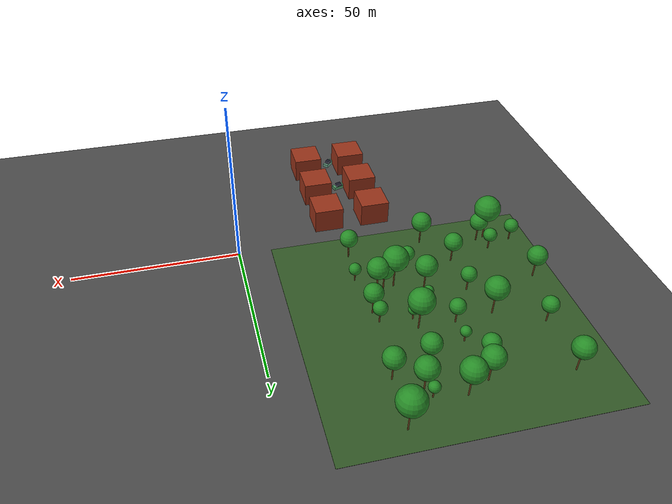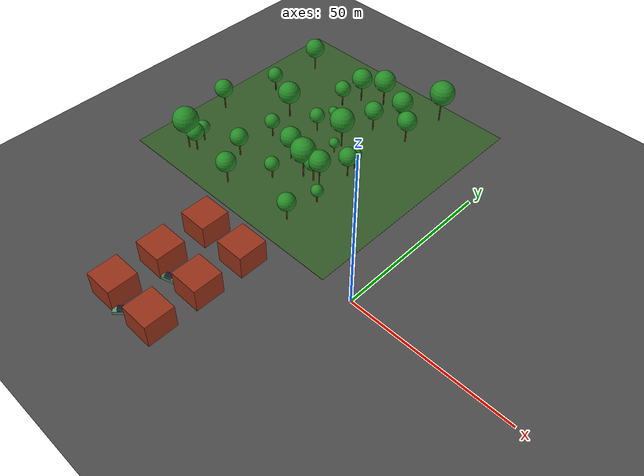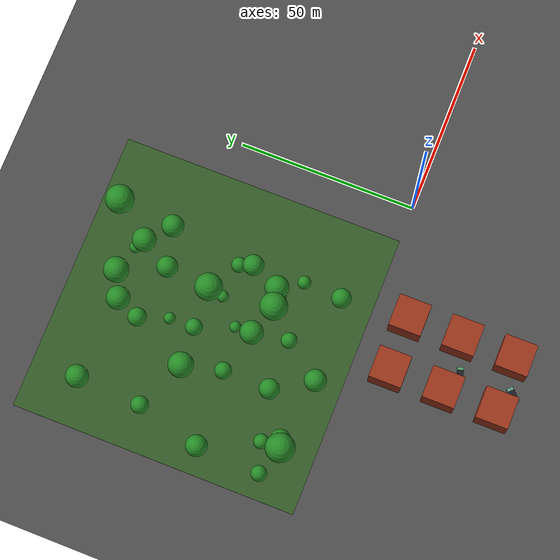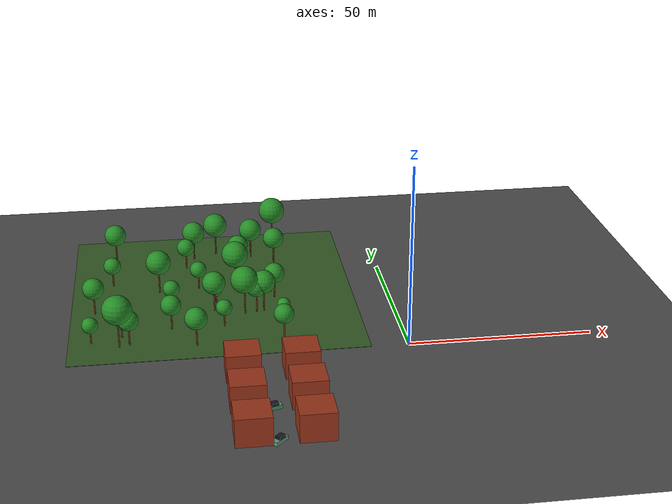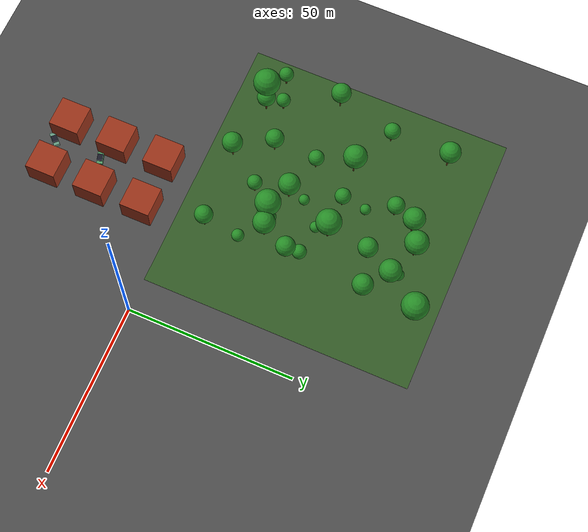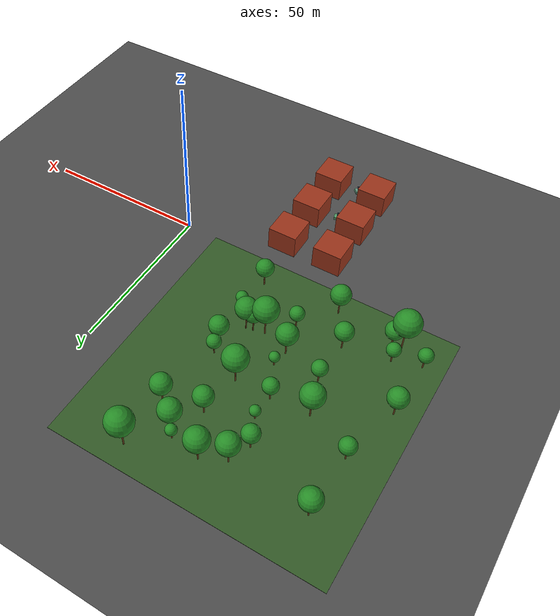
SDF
<sdf version="1.6">
 <world name="drone_city_dynamic">
  <include><uri>model://sun</uri></include>
  <model name="ground_plane">
   <static>true</static>
   <link name="link">
    <collision name="collision">
     <geometry><plane><normal>0 0 1</normal><size>400 400</size></plane></geometry>
    </collision>
    <visual name="visual">
     <geometry><plane><normal>0 0 1</normal><size>400 400</size></plane></geometry>
     <material><ambient>0.28 0.28 0.28 1</ambient><diffuse>0.3 0.3 0.3 1</diffuse></material>
    </visual>
   </link>
  </model>
  <model name="park_grass">
   <static>true</static>
   <pose>-50 40 0.01 0 0 0</pose>
   <link name="l">
    <visual name="v">
     <geometry><plane><normal>0 0 1</normal><size>80 80</size></plane></geometry>
     <material><ambient>0.2 0.35 0.15 1</ambient></material>
    </visual>
   </link>
  </model>
  <model name="park_tree_0">
   <static>true</static>
   <pose>-53.53105096433167 49.667567099704264 0 0 0 0</pose>
   <link name="l">
    <visual name="t">
     <pose>0 0 1.5753098112096817 0 0 0</pose>
     <geometry><cylinder><radius>0.2</radius><length>3.1506196224193634</length></cylinder></geometry>
     <material><ambient>0.4 0.25 0.1 1</ambient></material>
    </visual>
    <collision name="c">
     <pose>0 0 1.5753098112096817 0 0 0</pose>
     <geometry><cylinder><radius>0.2</radius><length>3.1506196224193634</length></cylinder></geometry>
    </collision>
    <visual name="canopy">
     <pose>0 0 3.7259294336290454 0 0 0</pose>
     <geometry><sphere><radius>1.5753098112096817</radius></sphere></geometry>
     <material><ambient>0.1 0.5 0.1 1</ambient><diffuse>0.15 0.55 0.15 1</diffuse></material>
    </visual>
    <collision name="canopy_c">
     <pose>0 0 3.7259294336290454 0 0 0</pose>
     <geometry><sphere><radius>1.5753098112096817</radius></sphere></geometry>
    </collision>
   </link>
  </model>
  <model name="park_tree_1">
   <static>true</static>
   <pose>-47.91173286627025 17.553910634512516 0 0 0 0</pose>
   <link name="l">
    <visual name="t">
     <pose>0 0 2.2063581630802718 0 0 0</pose>
     <geometry><cylinder><radius>0.2</radius><length>4.4127163261605435</length></cylinder></geometry>
     <material><ambient>0.4 0.25 0.1 1</ambient></material>
    </visual>
    <collision name="c">
     <pose>0 0 2.2063581630802718 0 0 0</pose>
     <geometry><cylinder><radius>0.2</radius><length>4.4127163261605435</length></cylinder></geometry>
    </collision>
    <visual name="canopy">
     <pose>0 0 5.619074489240815 0 0 0</pose>
     <geometry><sphere><radius>2.2063581630802718</radius></sphere></geometry>
     <material><ambient>0.1 0.5 0.1 1</ambient><diffuse>0.15 0.55 0.15 1</diffuse></material>
    </visual>
    <collision name="canopy_c">
     <pose>0 0 5.619074489240815 0 0 0</pose>
     <geometry><sphere><radius>2.2063581630802718</radius></sphere></geometry>
    </collision>
   </link>
  </model>
  <model name="park_tree_2">
   <static>true</static>
   <pose>-33.413778043619125 37.62001722663782 0 0 0 0</pose>
   <link name="l">
    <visual name="t">
     <pose>0 0 2.120419053900255 0 0 0</pose>
     <geometry><cylinder><radius>0.2</radius><length>4.24083810780051</length></cylinder></geometry>
     <material><ambient>0.4 0.25 0.1 1</ambient></material>
    </visual>
    <collision name="c">
     <pose>0 0 2.120419053900255 0 0 0</pose>
     <geometry><cylinder><radius>0.2</radius><length>4.24083810780051</length></cylinder></geometry>
    </collision>
    <visual name="canopy">
     <pose>0 0 5.361257161700765 0 0 0</pose>
     <geometry><sphere><radius>2.120419053900255</radius></sphere></geometry>
     <material><ambient>0.1 0.5 0.1 1</ambient><diffuse>0.15 0.55 0.15 1</diffuse></material>
    </visual>
    <collision name="canopy_c">
     <pose>0 0 5.361257161700765 0 0 0</pose>
     <geometry><sphere><radius>2.120419053900255</radius></sphere></geometry>
    </collision>
   </link>
  </model>
  <model name="park_tree_4">
   <static>true</static>
   <pose>-30.48851024608905 57.889605427475225 0 0 0 0</pose>
   <link name="l">
    <visual name="t">
     <pose>0 0 3.0552513974937225 0 0 0</pose>
     <geometry><cylinder><radius>0.2</radius><length>6.110502794987445</length></cylinder></geometry>
     <material><ambient>0.4 0.25 0.1 1</ambient></material>
    </visual>
    <collision name="c">
     <pose>0 0 3.0552513974937225 0 0 0</pose>
     <geometry><cylinder><radius>0.2</radius><length>6.110502794987445</length></cylinder></geometry>
    </collision>
    <visual name="canopy">
     <pose>0 0 8.165754192481167 0 0 0</pose>
     <geometry><sphere><radius>3.0552513974937225</radius></sphere></geometry>
     <material><ambient>0.1 0.5 0.1 1</ambient><diffuse>0.15 0.55 0.15 1</diffuse></material>
    </visual>
    <collision name="canopy_c">
     <pose>0 0 8.165754192481167 0 0 0</pose>
     <geometry><sphere><radius>3.0552513974937225</radius></sphere></geometry>
    </collision>
   </link>
  </model>
  <model name="park_tree_5">
   <static>true</static>
   <pose>-32.40478404386583 8.642163030676922 0 0 0 0</pose>
   <link name="l">
    <visual name="t">
     <pose>0 0 2.7009145895455666 0 0 0</pose>
     <geometry><cylinder><radius>0.2</radius><length>5.401829179091133</length></cylinder></geometry>
     <material><ambient>0.4 0.25 0.1 1</ambient></material>
    </visual>
    <collision name="c">
     <pose>0 0 2.7009145895455666 0 0 0</pose>
     <geometry><cylinder><radius>0.2</radius><length>5.401829179091133</length></cylinder></geometry>
    </collision>
    <visual name="canopy">
     <pose>0 0 7.102743768636699 0 0 0</pose>
     <geometry><sphere><radius>2.7009145895455666</radius></sphere></geometry>
     <material><ambient>0.1 0.5 0.1 1</ambient><diffuse>0.15 0.55 0.15 1</diffuse></material>
    </visual>
    <collision name="canopy_c">
     <pose>0 0 7.102743768636699 0 0 0</pose>
     <geometry><sphere><radius>2.7009145895455666</radius></sphere></geometry>
    </collision>
   </link>
  </model>
  <model name="park_tree_6">
   <static>true</static>
   <pose>-73.66108109370279 9.940332742071963 0 0 0 0</pose>
   <link name="l">
    <visual name="t">
     <pose>0 0 2.7462278169217447 0 0 0</pose>
     <geometry><cylinder><radius>0.2</radius><length>5.492455633843489</length></cylinder></geometry>
     <material><ambient>0.4 0.25 0.1 1</ambient></material>
    </visual>
    <collision name="c">
     <pose>0 0 2.7462278169217447 0 0 0</pose>
     <geometry><cylinder><radius>0.2</radius><length>5.492455633843489</length></cylinder></geometry>
    </collision>
    <visual name="canopy">
     <pose>0 0 7.238683450765233 0 0 0</pose>
     <geometry><sphere><radius>2.7462278169217447</radius></sphere></geometry>
     <material><ambient>0.1 0.5 0.1 1</ambient><diffuse>0.15 0.55 0.15 1</diffuse></material>
    </visual>
    <collision name="canopy_c">
     <pose>0 0 7.238683450765233 0 0 0</pose>
     <geometry><sphere><radius>2.7462278169217447</radius></sphere></geometry>
    </collision>
   </link>
  </model>
  <model name="park_tree_7">
   <static>true</static>
   <pose>-61.91261466379235 30.80729327240866 0 0 0 0</pose>
   <link name="l">
    <visual name="t">
     <pose>0 0 2.3293360776339966 0 0 0</pose>
     <geometry><cylinder><radius>0.2</radius><length>4.658672155267993</length></cylinder></geometry>
     <material><ambient>0.4 0.25 0.1 1</ambient></material>
    </visual>
    <collision name="c">
     <pose>0 0 2.3293360776339966 0 0 0</pose>
     <geometry><cylinder><radius>0.2</radius><length>4.658672155267993</length></cylinder></geometry>
    </collision>
    <visual name="canopy">
     <pose>0 0 5.98800823290199 0 0 0</pose>
     <geometry><sphere><radius>2.3293360776339966</radius></sphere></geometry>
     <material><ambient>0.1 0.5 0.1 1</ambient><diffuse>0.15 0.55 0.15 1</diffuse></material>
    </visual>
    <collision name="canopy_c">
     <pose>0 0 5.98800823290199 0 0 0</pose>
     <geometry><sphere><radius>2.3293360776339966</radius></sphere></geometry>
    </collision>
   </link>
  </model>
  <model name="park_tree_8">
   <static>true</static>
   <pose>-38.39364712072775 25.175573590653677 0 0 0 0</pose>
   <link name="l">
    <visual name="t">
     <pose>0 0 2.93680283831402 0 0 0</pose>
     <geometry><cylinder><radius>0.2</radius><length>5.87360567662804</length></cylinder></geometry>
     <material><ambient>0.4 0.25 0.1 1</ambient></material>
    </visual>
    <collision name="c">
     <pose>0 0 2.93680283831402 0 0 0</pose>
     <geometry><cylinder><radius>0.2</radius><length>5.87360567662804</length></cylinder></geometry>
    </collision>
    <visual name="canopy">
     <pose>0 0 7.810408514942061 0 0 0</pose>
     <geometry><sphere><radius>2.93680283831402</radius></sphere></geometry>
     <material><ambient>0.1 0.5 0.1 1</ambient><diffuse>0.15 0.55 0.15 1</diffuse></material>
    </visual>
    <collision name="canopy_c">
     <pose>0 0 7.810408514942061 0 0 0</pose>
     <geometry><sphere><radius>2.93680283831402</radius></sphere></geometry>
    </collision>
   </link>
  </model>
  <model name="park_tree_9">
   <static>true</static>
   <pose>-76.32675323236839 8.976289651185912 0 0 0 0</pose>
   <link name="l">
    <visual name="t">
     <pose>0 0 3.9976049587832327 0 0 0</pose>
     <geometry><cylinder><radius>0.2</radius><length>7.9952099175664655</length></cylinder></geometry>
     <material><ambient>0.4 0.25 0.1 1</ambient></material>
    </visual>
    <collision name="c">
     <pose>0 0 3.9976049587832327 0 0 0</pose>
     <geometry><cylinder><radius>0.2</radius><length>7.9952099175664655</length></cylinder></geometry>
    </collision>
    <visual name="canopy">
     <pose>0 0 10.992814876349698 0 0 0</pose>
     <geometry><sphere><radius>3.9976049587832327</radius></sphere></geometry>
     <material><ambient>0.1 0.5 0.1 1</ambient><diffuse>0.15 0.55 0.15 1</diffuse></material>
    </visual>
    <collision name="canopy_c">
     <pose>0 0 10.992814876349698 0 0 0</pose>
     <geometry><sphere><radius>3.9976049587832327</radius></sphere></geometry>
    </collision>
   </link>
  </model>
  <model name="park_tree_10">
   <static>true</static>
   <pose>-56.9150259048696 57.46744195610461 0 0 0 0</pose>
   <link name="l">
    <visual name="t">
     <pose>0 0 2.5767525791468104 0 0 0</pose>
     <geometry><cylinder><radius>0.2</radius><length>5.153505158293621</length></cylinder></geometry>
     <material><ambient>0.4 0.25 0.1 1</ambient></material>
    </visual>
    <collision name="c">
     <pose>0 0 2.5767525791468104 0 0 0</pose>
     <geometry><cylinder><radius>0.2</radius><length>5.153505158293621</length></cylinder></geometry>
    </collision>
    <visual name="canopy">
     <pose>0 0 6.730257737440431 0 0 0</pose>
     <geometry><sphere><radius>2.5767525791468104</radius></sphere></geometry>
     <material><ambient>0.1 0.5 0.1 1</ambient><diffuse>0.15 0.55 0.15 1</diffuse></material>
    </visual>
    <collision name="canopy_c">
     <pose>0 0 6.730257737440431 0 0 0</pose>
     <geometry><sphere><radius>2.5767525791468104</radius></sphere></geometry>
    </collision>
   </link>
  </model>
  <model name="park_tree_12">
   <static>true</static>
   <pose>-49.3110169221994 32.41624795342417 0 0 0 0</pose>
   <link name="l">
    <visual name="t">
     <pose>0 0 1.5612157209909359 0 0 0</pose>
     <geometry><cylinder><radius>0.2</radius><length>3.1224314419818717</length></cylinder></geometry>
     <material><ambient>0.4 0.25 0.1 1</ambient></material>
    </visual>
    <collision name="c">
     <pose>0 0 1.5612157209909359 0 0 0</pose>
     <geometry><cylinder><radius>0.2</radius><length>3.1224314419818717</length></cylinder></geometry>
    </collision>
    <visual name="canopy">
     <pose>0 0 3.6836471629728074 0 0 0</pose>
     <geometry><sphere><radius>1.5612157209909359</radius></sphere></geometry>
     <material><ambient>0.1 0.5 0.1 1</ambient><diffuse>0.15 0.55 0.15 1</diffuse></material>
    </visual>
    <collision name="canopy_c">
     <pose>0 0 3.6836471629728074 0 0 0</pose>
     <geometry><sphere><radius>1.5612157209909359</radius></sphere></geometry>
    </collision>
   </link>
  </model>
  <model name="park_tree_13">
   <static>true</static>
   <pose>-41.756900435846276 24.3738400538274 0 0 0 0</pose>
   <link name="l">
    <visual name="t">
     <pose>0 0 3.8057504760738885 0 0 0</pose>
     <geometry><cylinder><radius>0.2</radius><length>7.611500952147777</length></cylinder></geometry>
     <material><ambient>0.4 0.25 0.1 1</ambient></material>
    </visual>
    <collision name="c">
     <pose>0 0 3.8057504760738885 0 0 0</pose>
     <geometry><cylinder><radius>0.2</radius><length>7.611500952147777</length></cylinder></geometry>
    </collision>
    <visual name="canopy">
     <pose>0 0 10.417251428221665 0 0 0</pose>
     <geometry><sphere><radius>3.8057504760738885</radius></sphere></geometry>
     <material><ambient>0.1 0.5 0.1 1</ambient><diffuse>0.15 0.55 0.15 1</diffuse></material>
    </visual>
    <collision name="canopy_c">
     <pose>0 0 10.417251428221665 0 0 0</pose>
     <geometry><sphere><radius>3.8057504760738885</radius></sphere></geometry>
    </collision>
   </link>
  </model>
  <model name="park_tree_14">
   <static>true</static>
   <pose>-77.80574725727959 65.78665117898902 0 0 0 0</pose>
   <link name="l">
    <visual name="t">
     <pose>0 0 3.1427871361289745 0 0 0</pose>
     <geometry><cylinder><radius>0.2</radius><length>6.285574272257949</length></cylinder></geometry>
     <material><ambient>0.4 0.25 0.1 1</ambient></material>
    </visual>
    <collision name="c">
     <pose>0 0 3.1427871361289745 0 0 0</pose>
     <geometry><cylinder><radius>0.2</radius><length>6.285574272257949</length></cylinder></geometry>
    </collision>
    <visual name="canopy">
     <pose>0 0 8.428361408386923 0 0 0</pose>
     <geometry><sphere><radius>3.1427871361289745</radius></sphere></geometry>
     <material><ambient>0.1 0.5 0.1 1</ambient><diffuse>0.15 0.55 0.15 1</diffuse></material>
    </visual>
    <collision name="canopy_c">
     <pose>0 0 8.428361408386923 0 0 0</pose>
     <geometry><sphere><radius>3.1427871361289745</radius></sphere></geometry>
    </collision>
   </link>
  </model>
  <model name="park_tree_16">
   <static>true</static>
   <pose>-65.18720226528323 41.42756035468179 0 0 0 0</pose>
   <link name="l">
    <visual name="t">
     <pose>0 0 3.491174969916055 0 0 0</pose>
     <geometry><cylinder><radius>0.2</radius><length>6.98234993983211</length></cylinder></geometry>
     <material><ambient>0.4 0.25 0.1 1</ambient></material>
    </visual>
    <collision name="c">
     <pose>0 0 3.491174969916055 0 0 0</pose>
     <geometry><cylinder><radius>0.2</radius><length>6.98234993983211</length></cylinder></geometry>
    </collision>
    <visual name="canopy">
     <pose>0 0 9.473524909748164 0 0 0</pose>
     <geometry><sphere><radius>3.491174969916055</radius></sphere></geometry>
     <material><ambient>0.1 0.5 0.1 1</ambient><diffuse>0.15 0.55 0.15 1</diffuse></material>
    </visual>
    <collision name="canopy_c">
     <pose>0 0 9.473524909748164 0 0 0</pose>
     <geometry><sphere><radius>3.491174969916055</radius></sphere></geometry>
    </collision>
   </link>
  </model>
  <model name="park_tree_17">
   <static>true</static>
   <pose>-62.271529132607554 17.553602289663125 0 0 0 0</pose>
   <link name="l">
    <visual name="t">
     <pose>0 0 2.7687344374726135 0 0 0</pose>
     <geometry><cylinder><radius>0.2</radius><length>5.537468874945227</length></cylinder></geometry>
     <material><ambient>0.4 0.25 0.1 1</ambient></material>
    </visual>
    <collision name="c">
     <pose>0 0 2.7687344374726135 0 0 0</pose>
     <geometry><cylinder><radius>0.2</radius><length>5.537468874945227</length></cylinder></geometry>
    </collision>
    <visual name="canopy">
     <pose>0 0 7.306203312417841 0 0 0</pose>
     <geometry><sphere><radius>2.7687344374726135</radius></sphere></geometry>
     <material><ambient>0.1 0.5 0.1 1</ambient><diffuse>0.15 0.55 0.15 1</diffuse></material>
    </visual>
    <collision name="canopy_c">
     <pose>0 0 7.306203312417841 0 0 0</pose>
     <geometry><sphere><radius>2.7687344374726135</radius></sphere></geometry>
    </collision>
   </link>
  </model>
  <model name="park_tree_18">
   <static>true</static>
   <pose>-50.09139984073906 27.376590868619125 0 0 0 0</pose>
   <link name="l">
    <visual name="t">
     <pose>0 0 3.1993799529781444 0 0 0</pose>
     <geometry><cylinder><radius>0.2</radius><length>6.398759905956289</length></cylinder></geometry>
     <material><ambient>0.4 0.25 0.1 1</ambient></material>
    </visual>
    <collision name="c">
     <pose>0 0 3.1993799529781444 0 0 0</pose>
     <geometry><cylinder><radius>0.2</radius><length>6.398759905956289</length></cylinder></geometry>
    </collision>
    <visual name="canopy">
     <pose>0 0 8.598139858934433 0 0 0</pose>
     <geometry><sphere><radius>3.1993799529781444</radius></sphere></geometry>
     <material><ambient>0.1 0.5 0.1 1</ambient><diffuse>0.15 0.55 0.15 1</diffuse></material>
    </visual>
    <collision name="canopy_c">
     <pose>0 0 8.598139858934433 0 0 0</pose>
     <geometry><sphere><radius>3.1993799529781444</radius></sphere></geometry>
    </collision>
   </link>
  </model>
  <model name="park_tree_19">
   <static>true</static>
   <pose>-78.52535916114878 47.790135762831156 0 0 0 0</pose>
   <link name="l">
    <visual name="t">
     <pose>0 0 2.4402538849267197 0 0 0</pose>
     <geometry><cylinder><radius>0.2</radius><length>4.880507769853439</length></cylinder></geometry>
     <material><ambient>0.4 0.25 0.1 1</ambient></material>
    </visual>
    <collision name="c">
     <pose>0 0 2.4402538849267197 0 0 0</pose>
     <geometry><cylinder><radius>0.2</radius><length>4.880507769853439</length></cylinder></geometry>
    </collision>
    <visual name="canopy">
     <pose>0 0 6.320761654780159 0 0 0</pose>
     <geometry><sphere><radius>2.4402538849267197</radius></sphere></geometry>
     <material><ambient>0.1 0.5 0.1 1</ambient><diffuse>0.15 0.55 0.15 1</diffuse></material>
    </visual>
    <collision name="canopy_c">
     <pose>0 0 6.320761654780159 0 0 0</pose>
     <geometry><sphere><radius>2.4402538849267197</radius></sphere></geometry>
    </collision>
   </link>
  </model>
  <model name="park_tree_20">
   <static>true</static>
   <pose>-36.339006151319104 25.555694797138226 0 0 0 0</pose>
   <link name="l">
    <visual name="t">
     <pose>0 0 3.288948108529846 0 0 0</pose>
     <geometry><cylinder><radius>0.2</radius><length>6.577896217059692</length></cylinder></geometry>
     <material><ambient>0.4 0.25 0.1 1</ambient></material>
    </visual>
    <collision name="c">
     <pose>0 0 3.288948108529846 0 0 0</pose>
     <geometry><cylinder><radius>0.2</radius><length>6.577896217059692</length></cylinder></geometry>
    </collision>
    <visual name="canopy">
     <pose>0 0 8.866844325589538 0 0 0</pose>
     <geometry><sphere><radius>3.288948108529846</radius></sphere></geometry>
     <material><ambient>0.1 0.5 0.1 1</ambient><diffuse>0.15 0.55 0.15 1</diffuse></material>
    </visual>
    <collision name="canopy_c">
     <pose>0 0 8.866844325589538 0 0 0</pose>
     <geometry><sphere><radius>3.288948108529846</radius></sphere></geometry>
    </collision>
   </link>
  </model>
  <model name="park_tree_21">
   <static>true</static>
   <pose>-42.76493213677202 38.65688184782223 0 0 0 0</pose>
   <link name="l">
    <visual name="t">
     <pose>0 0 1.6100351133449085 0 0 0</pose>
     <geometry><cylinder><radius>0.2</radius><length>3.220070226689817</length></cylinder></geometry>
     <material><ambient>0.4 0.25 0.1 1</ambient></material>
    </visual>
    <collision name="c">
     <pose>0 0 1.6100351133449085 0 0 0</pose>
     <geometry><cylinder><radius>0.2</radius><length>3.220070226689817</length></cylinder></geometry>
    </collision>
    <visual name="canopy">
     <pose>0 0 3.8301053400347254 0 0 0</pose>
     <geometry><sphere><radius>1.6100351133449085</radius></sphere></geometry>
     <material><ambient>0.1 0.5 0.1 1</ambient><diffuse>0.15 0.55 0.15 1</diffuse></material>
    </visual>
    <collision name="canopy_c">
     <pose>0 0 3.8301053400347254 0 0 0</pose>
     <geometry><sphere><radius>1.6100351133449085</radius></sphere></geometry>
    </collision>
   </link>
  </model>
  <model name="park_tree_22">
   <static>true</static>
   <pose>-75.70922908106868 14.51824852468684 0 0 0 0</pose>
   <link name="l">
    <visual name="t">
     <pose>0 0 2.077448572149193 0 0 0</pose>
     <geometry><cylinder><radius>0.2</radius><length>4.154897144298386</length></cylinder></geometry>
     <material><ambient>0.4 0.25 0.1 1</ambient></material>
    </visual>
    <collision name="c">
     <pose>0 0 2.077448572149193 0 0 0</pose>
     <geometry><cylinder><radius>0.2</radius><length>4.154897144298386</length></cylinder></geometry>
    </collision>
    <visual name="canopy">
     <pose>0 0 5.232345716447579 0 0 0</pose>
     <geometry><sphere><radius>2.077448572149193</radius></sphere></geometry>
     <material><ambient>0.1 0.5 0.1 1</ambient><diffuse>0.15 0.55 0.15 1</diffuse></material>
    </visual>
    <collision name="canopy_c">
     <pose>0 0 5.232345716447579 0 0 0</pose>
     <geometry><sphere><radius>2.077448572149193</radius></sphere></geometry>
    </collision>
   </link>
  </model>
  <model name="park_tree_24">
   <static>true</static>
   <pose>-29.438967718100578 73.54182491008555 0 0 0 0</pose>
   <link name="l">
    <visual name="t">
     <pose>0 0 3.945545142982923 0 0 0</pose>
     <geometry><cylinder><radius>0.2</radius><length>7.891090285965846</length></cylinder></geometry>
     <material><ambient>0.4 0.25 0.1 1</ambient></material>
    </visual>
    <collision name="c">
     <pose>0 0 3.945545142982923 0 0 0</pose>
     <geometry><cylinder><radius>0.2</radius><length>7.891090285965846</length></cylinder></geometry>
    </collision>
    <visual name="canopy">
     <pose>0 0 10.83663542894877 0 0 0</pose>
     <geometry><sphere><radius>3.945545142982923</radius></sphere></geometry>
     <material><ambient>0.1 0.5 0.1 1</ambient><diffuse>0.15 0.55 0.15 1</diffuse></material>
    </visual>
    <collision name="canopy_c">
     <pose>0 0 10.83663542894877 0 0 0</pose>
     <geometry><sphere><radius>3.945545142982923</radius></sphere></geometry>
    </collision>
   </link>
  </model>
  <model name="park_tree_25">
   <static>true</static>
   <pose>-83.82443187101619 11.999215903406117 0 0 0 0</pose>
   <link name="l">
    <visual name="t">
     <pose>0 0 2.1620116993909475 0 0 0</pose>
     <geometry><cylinder><radius>0.2</radius><length>4.324023398781895</length></cylinder></geometry>
     <material><ambient>0.4 0.25 0.1 1</ambient></material>
    </visual>
    <collision name="c">
     <pose>0 0 2.1620116993909475 0 0 0</pose>
     <geometry><cylinder><radius>0.2</radius><length>4.324023398781895</length></cylinder></geometry>
    </collision>
    <visual name="canopy">
     <pose>0 0 5.4860350981728425 0 0 0</pose>
     <geometry><sphere><radius>2.1620116993909475</radius></sphere></geometry>
     <material><ambient>0.1 0.5 0.1 1</ambient><diffuse>0.15 0.55 0.15 1</diffuse></material>
    </visual>
    <collision name="canopy_c">
     <pose>0 0 5.4860350981728425 0 0 0</pose>
     <geometry><sphere><radius>2.1620116993909475</radius></sphere></geometry>
    </collision>
   </link>
  </model>
  <model name="park_tree_26">
   <static>true</static>
   <pose>-31.36485682785738 19.600688629527774 0 0 0 0</pose>
   <link name="l">
    <visual name="t">
     <pose>0 0 1.8308404438525125 0 0 0</pose>
     <geometry><cylinder><radius>0.2</radius><length>3.661680887705025</length></cylinder></geometry>
     <material><ambient>0.4 0.25 0.1 1</ambient></material>
    </visual>
    <collision name="c">
     <pose>0 0 1.8308404438525125 0 0 0</pose>
     <geometry><cylinder><radius>0.2</radius><length>3.661680887705025</length></cylinder></geometry>
    </collision>
    <visual name="canopy">
     <pose>0 0 4.492521331557538 0 0 0</pose>
     <geometry><sphere><radius>1.8308404438525125</radius></sphere></geometry>
     <material><ambient>0.1 0.5 0.1 1</ambient><diffuse>0.15 0.55 0.15 1</diffuse></material>
    </visual>
    <collision name="canopy_c">
     <pose>0 0 4.492521331557538 0 0 0</pose>
     <geometry><sphere><radius>1.8308404438525125</radius></sphere></geometry>
    </collision>
   </link>
  </model>
  <model name="park_tree_28">
   <static>true</static>
   <pose>-53.83420037565293 42.456689256986785 0 0 0 0</pose>
   <link name="l">
    <visual name="t">
     <pose>0 0 2.354950172864105 0 0 0</pose>
     <geometry><cylinder><radius>0.2</radius><length>4.70990034572821</length></cylinder></geometry>
     <material><ambient>0.4 0.25 0.1 1</ambient></material>
    </visual>
    <collision name="c">
     <pose>0 0 2.354950172864105 0 0 0</pose>
     <geometry><cylinder><radius>0.2</radius><length>4.70990034572821</length></cylinder></geometry>
    </collision>
    <visual name="canopy">
     <pose>0 0 6.064850518592315 0 0 0</pose>
     <geometry><sphere><radius>2.354950172864105</radius></sphere></geometry>
     <material><ambient>0.1 0.5 0.1 1</ambient><diffuse>0.15 0.55 0.15 1</diffuse></material>
    </visual>
    <collision name="canopy_c">
     <pose>0 0 6.064850518592315 0 0 0</pose>
     <geometry><sphere><radius>2.354950172864105</radius></sphere></geometry>
    </collision>
   </link>
  </model>
  <model name="park_tree_29">
   <static>true</static>
   <pose>-54.32820405464018 63.80776826815248 0 0 0 0</pose>
   <link name="l">
    <visual name="t">
     <pose>0 0 3.265302060811038 0 0 0</pose>
     <geometry><cylinder><radius>0.2</radius><length>6.530604121622076</length></cylinder></geometry>
     <material><ambient>0.4 0.25 0.1 1</ambient></material>
    </visual>
    <collision name="c">
     <pose>0 0 3.265302060811038 0 0 0</pose>
     <geometry><cylinder><radius>0.2</radius><length>6.530604121622076</length></cylinder></geometry>
    </collision>
    <visual name="canopy">
     <pose>0 0 8.795906182433114 0 0 0</pose>
     <geometry><sphere><radius>3.265302060811038</radius></sphere></geometry>
     <material><ambient>0.1 0.5 0.1 1</ambient><diffuse>0.15 0.55 0.15 1</diffuse></material>
    </visual>
    <collision name="canopy_c">
     <pose>0 0 8.795906182433114 0 0 0</pose>
     <geometry><sphere><radius>3.265302060811038</radius></sphere></geometry>
    </collision>
   </link>
  </model>
  <model name="park_tree_30">
   <static>true</static>
   <pose>-83.32878950417563 29.677687641733122 0 0 0 0</pose>
   <link name="l">
    <visual name="t">
     <pose>0 0 2.9556549851718295 0 0 0</pose>
     <geometry><cylinder><radius>0.2</radius><length>5.911309970343659</length></cylinder></geometry>
     <material><ambient>0.4 0.25 0.1 1</ambient></material>
    </visual>
    <collision name="c">
     <pose>0 0 2.9556549851718295 0 0 0</pose>
     <geometry><cylinder><radius>0.2</radius><length>5.911309970343659</length></cylinder></geometry>
    </collision>
    <visual name="canopy">
     <pose>0 0 7.866964955515488 0 0 0</pose>
     <geometry><sphere><radius>2.9556549851718295</radius></sphere></geometry>
     <material><ambient>0.1 0.5 0.1 1</ambient><diffuse>0.15 0.55 0.15 1</diffuse></material>
    </visual>
    <collision name="canopy_c">
     <pose>0 0 7.866964955515488 0 0 0</pose>
     <geometry><sphere><radius>2.9556549851718295</radius></sphere></geometry>
    </collision>
   </link>
  </model>
  <model name="park_tree_32">
   <static>true</static>
   <pose>-37.047478314369606 63.46592919114991 0 0 0 0</pose>
   <link name="l">
    <visual name="t">
     <pose>0 0 3.293879124124569 0 0 0</pose>
     <geometry><cylinder><radius>0.2</radius><length>6.587758248249138</length></cylinder></geometry>
     <material><ambient>0.4 0.25 0.1 1</ambient></material>
    </visual>
    <collision name="c">
     <pose>0 0 3.293879124124569 0 0 0</pose>
     <geometry><cylinder><radius>0.2</radius><length>6.587758248249138</length></cylinder></geometry>
    </collision>
    <visual name="canopy">
     <pose>0 0 8.881637372373707 0 0 0</pose>
     <geometry><sphere><radius>3.293879124124569</radius></sphere></geometry>
     <material><ambient>0.1 0.5 0.1 1</ambient><diffuse>0.15 0.55 0.15 1</diffuse></material>
    </visual>
    <collision name="canopy_c">
     <pose>0 0 8.881637372373707 0 0 0</pose>
     <geometry><sphere><radius>3.293879124124569</radius></sphere></geometry>
    </collision>
   </link>
  </model>
  <model name="park_tree_34">
   <static>true</static>
   <pose>-38.66993585403142 65.65678406416026 0 0 0 0</pose>
   <link name="l">
    <visual name="t">
     <pose>0 0 1.6542173423493294 0 0 0</pose>
     <geometry><cylinder><radius>0.2</radius><length>3.3084346846986588</length></cylinder></geometry>
     <material><ambient>0.4 0.25 0.1 1</ambient></material>
    </visual>
    <collision name="c">
     <pose>0 0 1.6542173423493294 0 0 0</pose>
     <geometry><cylinder><radius>0.2</radius><length>3.3084346846986588</length></cylinder></geometry>
    </collision>
    <visual name="canopy">
     <pose>0 0 3.962652027047988 0 0 0</pose>
     <geometry><sphere><radius>1.6542173423493294</radius></sphere></geometry>
     <material><ambient>0.1 0.5 0.1 1</ambient><diffuse>0.15 0.55 0.15 1</diffuse></material>
    </visual>
    <collision name="canopy_c">
     <pose>0 0 3.962652027047988 0 0 0</pose>
     <geometry><sphere><radius>1.6542173423493294</radius></sphere></geometry>
    </collision>
   </link>
  </model>
  <model name="park_tree_35">
   <static>true</static>
   <pose>-43.11584669014757 42.367157419727455 0 0 0 0</pose>
   <link name="l">
    <visual name="t">
     <pose>0 0 3.7698187059286004 0 0 0</pose>
     <geometry><cylinder><radius>0.2</radius><length>7.539637411857201</length></cylinder></geometry>
     <material><ambient>0.4 0.25 0.1 1</ambient></material>
    </visual>
    <collision name="c">
     <pose>0 0 3.7698187059286004 0 0 0</pose>
     <geometry><cylinder><radius>0.2</radius><length>7.539637411857201</length></cylinder></geometry>
    </collision>
    <visual name="canopy">
     <pose>0 0 10.309456117785802 0 0 0</pose>
     <geometry><sphere><radius>3.7698187059286004</radius></sphere></geometry>
     <material><ambient>0.1 0.5 0.1 1</ambient><diffuse>0.15 0.55 0.15 1</diffuse></material>
    </visual>
    <collision name="canopy_c">
     <pose>0 0 10.309456117785802 0 0 0</pose>
     <geometry><sphere><radius>3.7698187059286004</radius></sphere></geometry>
    </collision>
   </link>
  </model>
  <model name="park_tree_36">
   <static>true</static>
   <pose>-55.892200932042314 7.030536041074804 0 0 0 0</pose>
   <link name="l">
    <visual name="t">
     <pose>0 0 3.0251634448377596 0 0 0</pose>
     <geometry><cylinder><radius>0.2</radius><length>6.050326889675519</length></cylinder></geometry>
     <material><ambient>0.4 0.25 0.1 1</ambient></material>
    </visual>
    <collision name="c">
     <pose>0 0 3.0251634448377596 0 0 0</pose>
     <geometry><cylinder><radius>0.2</radius><length>6.050326889675519</length></cylinder></geometry>
    </collision>
    <visual name="canopy">
     <pose>0 0 8.07549033451328 0 0 0</pose>
     <geometry><sphere><radius>3.0251634448377596</radius></sphere></geometry>
     <material><ambient>0.1 0.5 0.1 1</ambient><diffuse>0.15 0.55 0.15 1</diffuse></material>
    </visual>
    <collision name="canopy_c">
     <pose>0 0 8.07549033451328 0 0 0</pose>
     <geometry><sphere><radius>3.0251634448377596</radius></sphere></geometry>
    </collision>
   </link>
  </model>
  <model name="park_tree_37">
   <static>true</static>
   <pose>-32.585714859291016 33.77487274695064 0 0 0 0</pose>
   <link name="l">
    <visual name="t">
     <pose>0 0 2.877148419252179 0 0 0</pose>
     <geometry><cylinder><radius>0.2</radius><length>5.754296838504358</length></cylinder></geometry>
     <material><ambient>0.4 0.25 0.1 1</ambient></material>
    </visual>
    <collision name="c">
     <pose>0 0 2.877148419252179 0 0 0</pose>
     <geometry><cylinder><radius>0.2</radius><length>5.754296838504358</length></cylinder></geometry>
    </collision>
    <visual name="canopy">
     <pose>0 0 7.6314452577565355 0 0 0</pose>
     <geometry><sphere><radius>2.877148419252179</radius></sphere></geometry>
     <material><ambient>0.1 0.5 0.1 1</ambient><diffuse>0.15 0.55 0.15 1</diffuse></material>
    </visual>
    <collision name="canopy_c">
     <pose>0 0 7.6314452577565355 0 0 0</pose>
     <geometry><sphere><radius>2.877148419252179</radius></sphere></geometry>
    </collision>
   </link>
  </model>
  <model name="park_tree_38">
   <static>true</static>
   <pose>-47.53056768660503 67.13431646647985 0 0 0 0</pose>
   <link name="l">
    <visual name="t">
     <pose>0 0 3.509556725224831 0 0 0</pose>
     <geometry><cylinder><radius>0.2</radius><length>7.019113450449662</length></cylinder></geometry>
     <material><ambient>0.4 0.25 0.1 1</ambient></material>
    </visual>
    <collision name="c">
     <pose>0 0 3.509556725224831 0 0 0</pose>
     <geometry><cylinder><radius>0.2</radius><length>7.019113450449662</length></cylinder></geometry>
    </collision>
    <visual name="canopy">
     <pose>0 0 9.528670175674494 0 0 0</pose>
     <geometry><sphere><radius>3.509556725224831</radius></sphere></geometry>
     <material><ambient>0.1 0.5 0.1 1</ambient><diffuse>0.15 0.55 0.15 1</diffuse></material>
    </visual>
    <collision name="canopy_c">
     <pose>0 0 9.528670175674494 0 0 0</pose>
     <geometry><sphere><radius>3.509556725224831</radius></sphere></geometry>
    </collision>
   </link>
  </model>
  <model name="park_tree_39">
   <static>true</static>
   <pose>-41.461617564019974 55.04348032950999 0 0 0 0</pose>
   <link name="l">
    <visual name="t">
     <pose>0 0 2.905105490016366 0 0 0</pose>
     <geometry><cylinder><radius>0.2</radius><length>5.810210980032732</length></cylinder></geometry>
     <material><ambient>0.4 0.25 0.1 1</ambient></material>
    </visual>
    <collision name="c">
     <pose>0 0 2.905105490016366 0 0 0</pose>
     <geometry><cylinder><radius>0.2</radius><length>5.810210980032732</length></cylinder></geometry>
    </collision>
    <visual name="canopy">
     <pose>0 0 7.715316470049098 0 0 0</pose>
     <geometry><sphere><radius>2.905105490016366</radius></sphere></geometry>
     <material><ambient>0.1 0.5 0.1 1</ambient><diffuse>0.15 0.55 0.15 1</diffuse></material>
    </visual>
    <collision name="canopy_c">
     <pose>0 0 7.715316470049098 0 0 0</pose>
     <geometry><sphere><radius>2.905105490016366</radius></sphere></geometry>
    </collision>
   </link>
  </model>
  <model name="suburb_house_0">
   <static>true</static>
   <pose>-45 -40 2.5 0 0 0</pose>
   <link name="l">
    <collision name="c"><geometry><box><size>8 8 5</size></box></geometry></collision>
    <visual name="v">
     <geometry><box><size>8 8 5</size></box></geometry>
     <material><ambient>0.8 0.7 0.6 1</ambient></material>
    </visual>
   </link>
  </model>
  <model name="suburb_roof_0">
   <static>true</static>
   <pose>-45 -39.99 3.75 0 0 0</pose>
   <link name="l">
    <collision name="c"><geometry><box><size>9 9 7.5</size></box></geometry></collision>
    <visual name="v">
     <geometry><box><size>9 9 7.5</size></box></geometry>
     <material><ambient>0.6 0.2 0.1 1</ambient></material>
    </visual>
   </link>
  </model>
  <model name="suburb_car_0">
   <static>true</static>
   <pose>-39 -43 0 0 0 0.7878783904086125</pose>
   <link name="l">
    <collision name="c">
     <pose>0 0 0.6 0 0 0</pose>
     <geometry><box><size>4.2 1.8 1.2</size></box></geometry>
    </collision>
    <visual name="body">
     <pose>0 0 0.5 0 0 0</pose>
     <geometry><box><size>4.2 1.8 1.0</size></box></geometry>
     <material><ambient>0.38656035055055915 0.5970834282097534 0.4959373916377482 1</ambient></material>
    </visual>
    <visual name="cab">
     <pose>0.2 0 1.2 0 0 0</pose>
     <geometry><box><size>2.0 1.6 0.8</size></box></geometry>
     <material><ambient>0.1 0.1 0.15 1</ambient></material>
    </visual>
   </link>
  </model>
  <model name="suburb_house_1">
   <static>true</static>
   <pose>-30 -40 2.5 0 0 0</pose>
   <link name="l">
    <collision name="c"><geometry><box><size>8 8 5</size></box></geometry></collision>
    <visual name="v">
     <geometry><box><size>8 8 5</size></box></geometry>
     <material><ambient>0.8 0.7 0.6 1</ambient></material>
    </visual>
   </link>
  </model>
  <model name="suburb_roof_1">
   <static>true</static>
   <pose>-30 -39.99 3.75 0 0 0</pose>
   <link name="l">
    <collision name="c"><geometry><box><size>9 9 7.5</size></box></geometry></collision>
    <visual name="v">
     <geometry><box><size>9 9 7.5</size></box></geometry>
     <material><ambient>0.6 0.2 0.1 1</ambient></material>
    </visual>
   </link>
  </model>
  <model name="suburb_house_4">
   <static>true</static>
   <pose>-45 -25 2.5 0 0 0</pose>
   <link name="l">
    <collision name="c"><geometry><box><size>8 8 5</size></box></geometry></collision>
    <visual name="v">
     <geometry><box><size>8 8 5</size></box></geometry>
     <material><ambient>0.8 0.7 0.6 1</ambient></material>
    </visual>
   </link>
  </model>
  <model name="suburb_roof_4">
   <static>true</static>
   <pose>-45 -24.99 3.75 0 0 0</pose>
   <link name="l">
    <collision name="c"><geometry><box><size>9 9 7.5</size></box></geometry></collision>
    <visual name="v">
     <geometry><box><size>9 9 7.5</size></box></geometry>
     <material><ambient>0.6 0.2 0.1 1</ambient></material>
    </visual>
   </link>
  </model>
  <model name="suburb_car_4">
   <static>true</static>
   <pose>-39 -28 0 0 0 0.30476131467438894</pose>
   <link name="l">
    <collision name="c">
     <pose>0 0 0.6 0 0 0</pose>
     <geometry><box><size>4.2 1.8 1.2</size></box></geometry>
    </collision>
    <visual name="body">
     <pose>0 0 0.5 0 0 0</pose>
     <geometry><box><size>4.2 1.8 1.0</size></box></geometry>
     <material><ambient>0.3219856098508729 0.5996728347986348 0.3991766029016831 1</ambient></material>
    </visual>
    <visual name="cab">
     <pose>0.2 0 1.2 0 0 0</pose>
     <geometry><box><size>2.0 1.6 0.8</size></box></geometry>
     <material><ambient>0.1 0.1 0.15 1</ambient></material>
    </visual>
   </link>
  </model>
  <model name="suburb_house_5">
   <static>true</static>
   <pose>-30 -25 2.5 0 0 0</pose>
   <link name="l">
    <collision name="c"><geometry><box><size>8 8 5</size></box></geometry></collision>
    <visual name="v">
     <geometry><box><size>8 8 5</size></box></geometry>
     <material><ambient>0.8 0.7 0.6 1</ambient></material>
    </visual>
   </link>
  </model>
  <model name="suburb_roof_5">
   <static>true</static>
   <pose>-30 -24.99 3.75 0 0 0</pose>
   <link name="l">
    <collision name="c"><geometry><box><size>9 9 7.5</size></box></geometry></collision>
    <visual name="v">
     <geometry><box><size>9 9 7.5</size></box></geometry>
     <material><ambient>0.6 0.2 0.1 1</ambient></material>
    </visual>
   </link>
  </model>
  <model name="suburb_house_8">
   <static>true</static>
   <pose>-45 -10 2.5 0 0 0</pose>
   <link name="l">
    <collision name="c"><geometry><box><size>8 8 5</size></box></geometry></collision>
    <visual name="v">
     <geometry><box><size>8 8 5</size></box></geometry>
     <material><ambient>0.8 0.7 0.6 1</ambient></material>
    </visual>
   </link>
  </model>
  <model name="suburb_roof_8">
   <static>true</static>
   <pose>-45 -9.99 3.75 0 0 0</pose>
   <link name="l">
    <collision name="c"><geometry><box><size>9 9 7.5</size></box></geometry></collision>
    <visual name="v">
     <geometry><box><size>9 9 7.5</size></box></geometry>
     <material><ambient>0.6 0.2 0.1 1</ambient></material>
    </visual>
   </link>
  </model>
  <model name="suburb_house_9">
   <static>true</static>
   <pose>-30 -10 2.5 0 0 0</pose>
   <link name="l">
    <collision name="c"><geometry><box><size>8 8 5</size></box></geometry></collision>
    <visual name="v">
     <geometry><box><size>8 8 5</size></box></geometry>
     <material><ambient>0.8 0.7 0.6 1</ambient></material>
    </visual>
   </link>
  </model>
  <model name="suburb_roof_9">
   <static>true</static>
   <pose>-30 -9.99 3.75 0 0 0</pose>
   <link name="l">
    <collision name="c"><geometry><box><size>9 9 7.5</size></box></geometry></collision>
    <visual name="v">
     <geometry><box><size>9 9 7.5</size></box></geometry>
     <material><ambient>0.6 0.2 0.1 1</ambient></material>
    </visual>
   </link>
  </model>
 </world>
</sdf>
